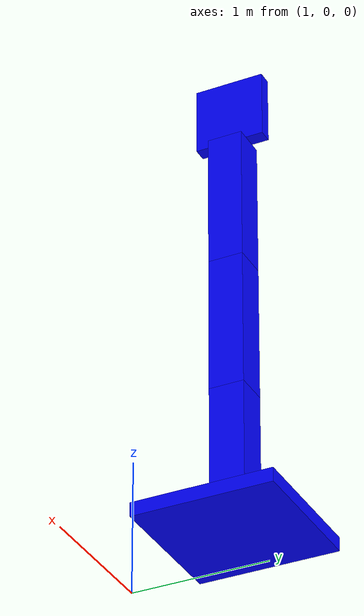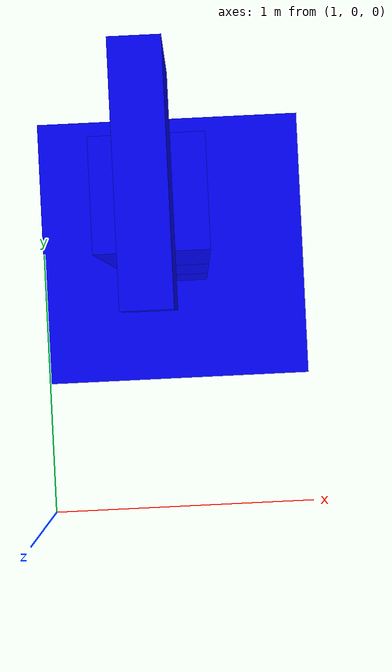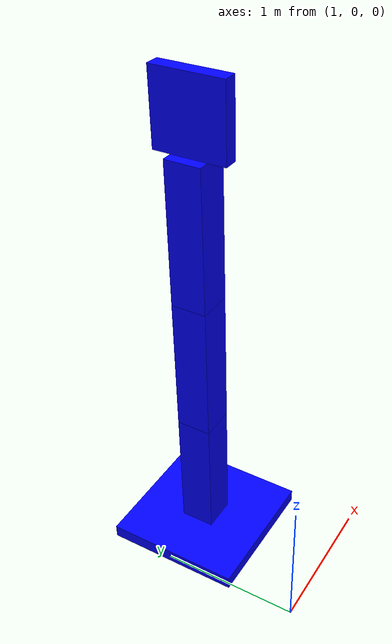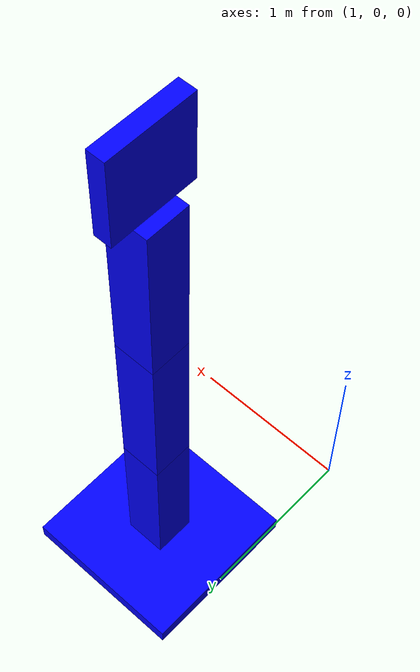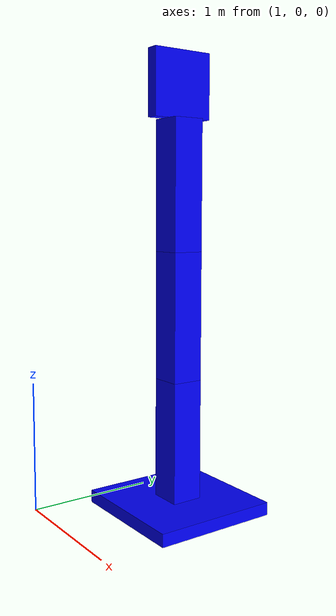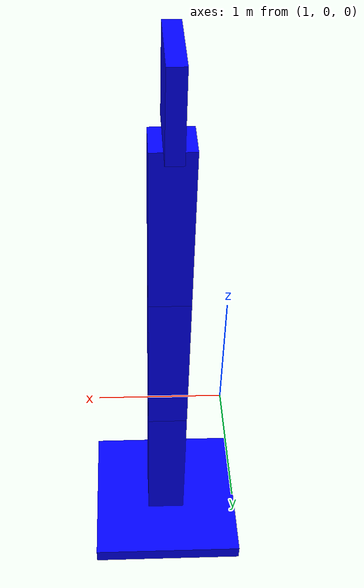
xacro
<?xml version="1.0"?>
<robot name="roboarm" xmlns:xacro="http://www.ros.org/wiki/xacro">

	<link name="world"></link>

	<link name="base_link">
		<visual>
			<origin xyz="0 0 0" rpy="0 0 0"/>
			<geometry>
				<box size="1 1 0.1" />
			</geometry>
			<material name="blue">
				<color rgba="0 0 1 1"/>
			</material>
		</visual>
	</link>

	<link name="forearm1">
		<visual>
			<origin xyz="0 0 0" rpy="0 0 0"/>
			<geometry>
				<box size="0.25 0.25 1" />
			</geometry>
			<material name="blue">
				<color rgba="0 0 1 1"/>
			</material>
		</visual>
	</link>

	<link name="forearm2">
		<visual>
			<origin xyz="0 0 0.5" rpy="0 0 0"/>
			<geometry>
				<box size="0.25 0.25 1" />
			</geometry>
			<material name="blue">
				<color rgba="0 0 1 1"/>
			</material>
		</visual>
	</link>

	<link name="forearm3">
		<visual>
			<origin xyz="0 0 0.5" rpy="0 0 0"/>
			<geometry>
				<box size="0.25 0.25 1" />
			</geometry>
			<material name="blue">
				<color rgba="0 0 1 1"/>
			</material>
		</visual>
	</link>

	<link name="palm">
		<visual>
			<origin xyz="0 0 0.25" rpy="0 0 0"/>
			<geometry>
				<box size="0.1 0.5 0.5" />
			</geometry>
			<material name="blue">
				<color rgba="0 0 1 1"/>
			</material>
		</visual>
	</link>

	<joint name="base_joint" type="fixed">
		<origin xyz="1.5 1.0 0" rpy="0 0 0"/>
		<parent link="world"/>
		<child link="base_link"/>
	</joint>

	<joint name="rotation" type="continuous">
		<parent link="base_link"/>
		<child link="forearm1"/>
		<origin xyz="0 0 0.5" rpy="0 0 0"/>
		<axis xyz="0 0 1"/>
	</joint>

	<joint name="elbow1" type="continuous">
		<parent link="forearm1"/>
		<child link="forearm2"/>
		<origin xyz="0 0 0.5" rpy="0 0 0"/>
		<axis xyz="0 1 0"/>
	</joint>

	<joint name="elbow2" type="continuous">
		<parent link="forearm2"/>
		<child link="forearm3"/>
		<origin xyz="0 0 1" rpy="0 0 0"/>
		<axis xyz="0 1 0"/>
	</joint>

	<joint name="wrist" type="continuous">
		<parent link="forearm3"/>
		<child link="palm"/>
		<origin xyz="0 0 1" rpy="0 0 0"/>
		<axis xyz="1 0 0"/>
	</joint>

</robot>
